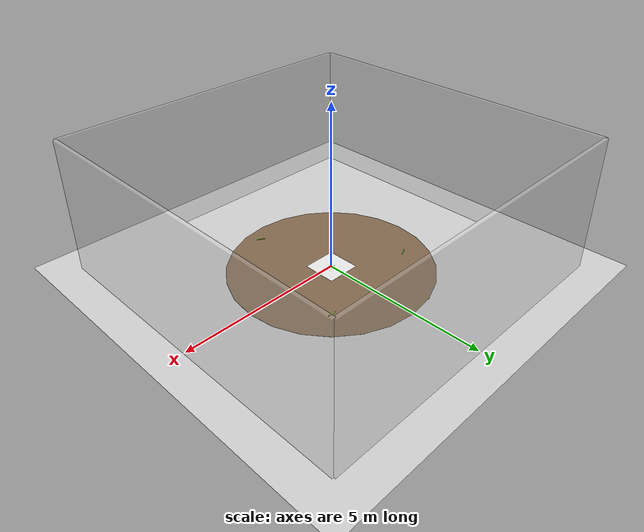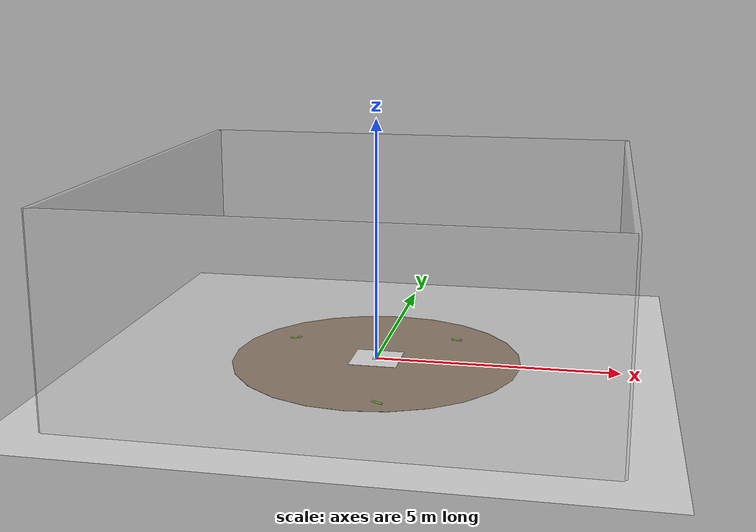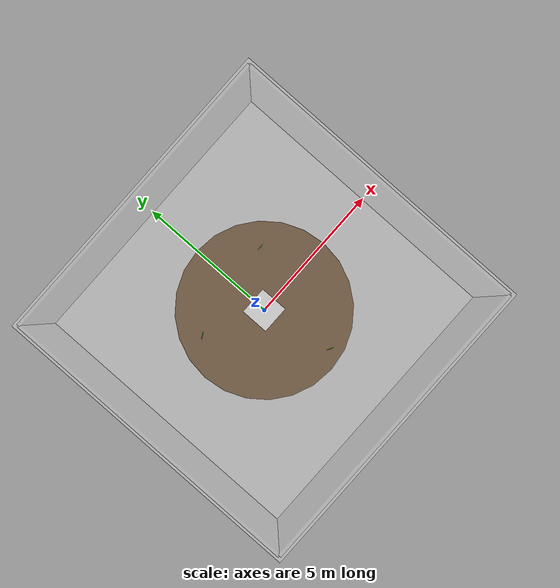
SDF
<?xml version="1.0" ?>
<sdf version="1.6">
  <world name="erc_drone_world">

    <!-- Işık ve Zemin -->
    <include>
      <uri>model://sun</uri>
    </include>
    <include>
      <uri>model://ground_plane</uri>
    </include>

    <!-- 3 Metre Yarıçaplı Yarışma Alanı (Zemindeki Daire) -->
    <model name="competition_area">
      <static>true</static>
      <pose>0 0 0.001 0 0 0</pose>
      <link name="link">
        <visual name="visual">
          <geometry>
            <cylinder>
              <radius>3.0</radius>
              <length>0.002</length>
            </cylinder>
          </geometry>
          <material>
            <!-- Kahverengimsi toprak rengi -->
            <ambient>0.5 0.4 0.3 1</ambient>
            <diffuse>0.5 0.4 0.3 1</diffuse>
          </material>
        </visual>
      </link>
    </model>

    <!-- 10x10x4 Kafes Duvarları -->
    <!-- Ön Duvar -->
    <model name="cage_front">
      <static>true</static>
      <pose>0 5 2 0 0 0</pose>
      <link name="link">
        <visual name="visual">
          <geometry><box><size>10 0.1 4</size></box></geometry>
          <material><ambient>0.8 0.8 0.8 1</ambient></material>
          <transparency>0.7</transparency>
        </visual>
        <collision name="collision">
          <geometry><box><size>10 0.1 4</size></box></geometry>
        </collision>
      </link>
    </model>
    <!-- Arka Duvar -->
    <model name="cage_back">
      <static>true</static>
      <pose>0 -5 2 0 0 0</pose>
      <link name="link">
        <visual name="visual">
          <geometry><box><size>10 0.1 4</size></box></geometry>
          <material><ambient>0.8 0.8 0.8 1</ambient></material>
          <transparency>0.7</transparency>
        </visual>
        <collision name="collision">
          <geometry><box><size>10 0.1 4</size></box></geometry>
        </collision>
      </link>
    </model>
    <!-- Sol Duvar -->
    <model name="cage_left">
      <static>true</static>
      <pose>-5 0 2 0 0 0</pose>
      <link name="link">
        <visual name="visual">
          <geometry><box><size>0.1 10 4</size></box></geometry>
          <material><ambient>0.8 0.8 0.8 1</ambient></material>
          <transparency>0.7</transparency>
        </visual>
        <collision name="collision">
          <geometry><box><size>0.1 10 4</size></box></geometry>
        </collision>
      </link>
    </model>
    <!-- Sağ Duvar -->
    <model name="cage_right">
      <static>true</static>
      <pose>5 0 2 0 0 0</pose>
      <link name="link">
        <visual name="visual">
          <geometry><box><size>0.1 10 4</size></box></geometry>
          <material><ambient>0.8 0.8 0.8 1</ambient></material>
          <transparency>0.7</transparency>
        </visual>
        <collision name="collision">
          <geometry><box><size>0.1 10 4</size></box></geometry>
        </collision>
      </link>
    </model>

    <!-- Merkezdeki 1x1 Kalkış Noktası ve ArUco 101 -->
    <model name="liftoff_spot">
      <static>true</static>
      <pose>0 0 0.002 0 0 0</pose>
      <link name="link">
        <!-- Beyaz zemin (1x1 m) -->
        <visual name="base_visual">
          <geometry><box><size>1 1 0.001</size></box></geometry>
          <material>
            <ambient>0.9 0.9 0.9 1</ambient>
            <diffuse>0.9 0.9 0.9 1</diffuse>
          </material>
        </visual>

        <!-- ArUco 101 İşaretçisi (15x15 cm) -->
        <visual name="aruco_visual">
          <pose>0 0 0.001 0 0 0</pose> <!-- Beyaz zeminden 1 mm yukarıda -->
          <geometry><box><size>0.15 0.15 0.001</size></box></geometry>
          <material>
            <script>
              <uri>model://aruco_markers/materials/scripts</uri>
              <uri>model://aruco_markers/materials/textures</uri>
              <name>Aruco101</name>
            </script>
          </material>
        </visual>
      </link>
    </model>

    <!-- Sabit Konumlu 3 Adet Prob (3 Metre İçinde Rastgele Dağıtılmış) -->
    <model name="probe_1">
      <static>true</static>
      <pose>1.5 1.5 0.015 0 1.5708 0</pose>
      <link name="link">
        <visual name="visual">
          <geometry><cylinder><radius>0.015</radius><length>0.24</length></cylinder></geometry>
          <material><ambient>0.6 1.0 0.2 1</ambient><diffuse>0.6 1.0 0.2 1</diffuse></material>
        </visual>
      </link>
    </model>

    <model name="probe_2">
      <static>true</static>
      <pose>-2.0 1.0 0.015 0 1.5708 0.5</pose>
      <link name="link">
        <visual name="visual">
          <geometry><cylinder><radius>0.015</radius><length>0.24</length></cylinder></geometry>
          <material><ambient>0.6 1.0 0.2 1</ambient><diffuse>0.6 1.0 0.2 1</diffuse></material>
        </visual>
      </link>
    </model>

    <model name="probe_3">
      <static>true</static>
      <pose>0.5 -2.5 0.015 0 1.5708 -0.5</pose>
      <link name="link">
        <visual name="visual">
          <geometry><cylinder><radius>0.015</radius><length>0.24</length></cylinder></geometry>
          <material><ambient>0.6 1.0 0.2 1</ambient><diffuse>0.6 1.0 0.2 1</diffuse></material>
        </visual>
      </link>
    </model>

  </world>
</sdf>
